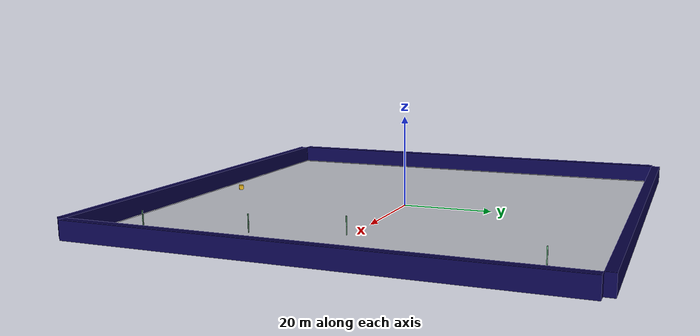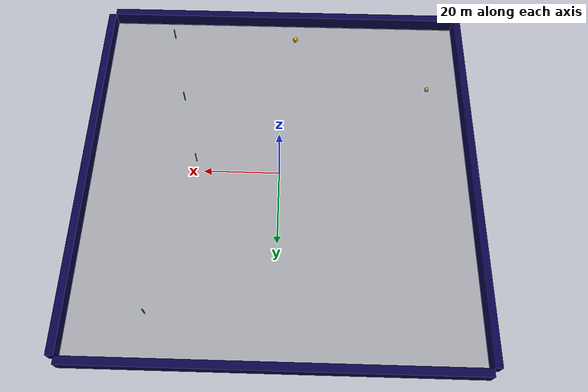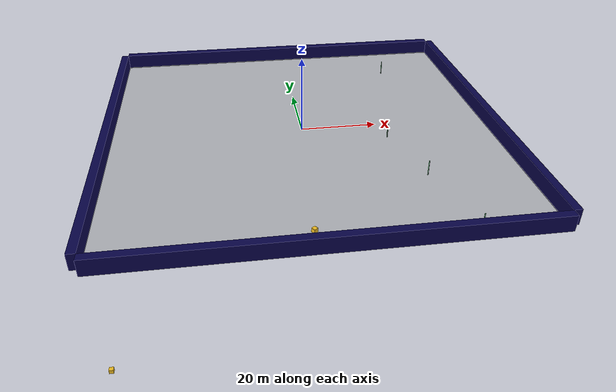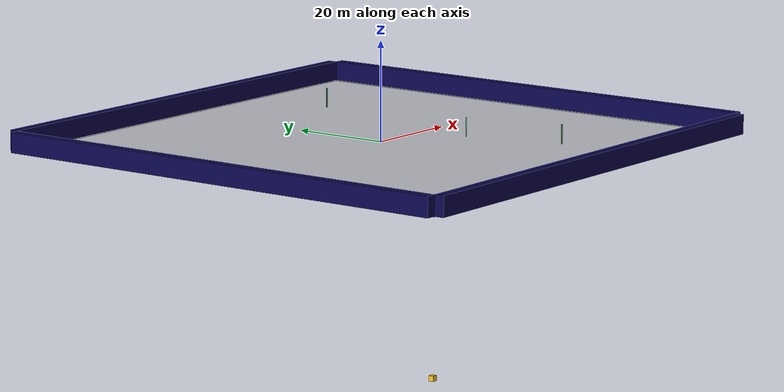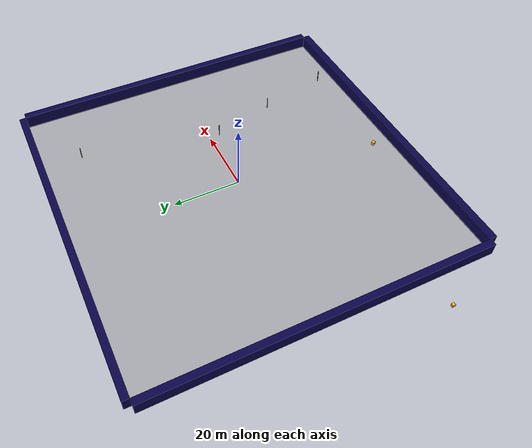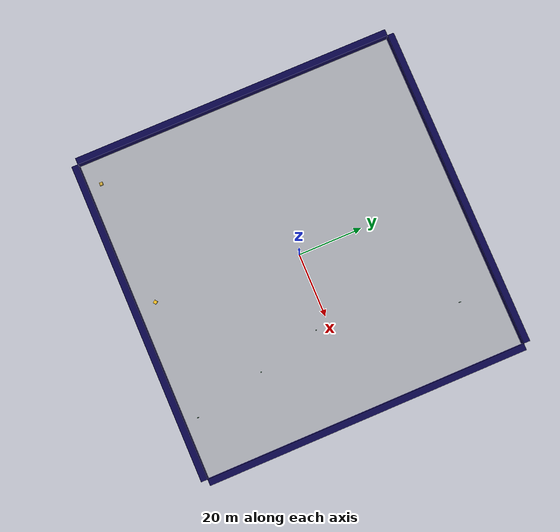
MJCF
<mujoco model="unnamed_model">
  <default>
    <default class="/" />
    <default class="border/" />
    <default class="border_1/" />
    <default class="border_2/" />
    <default class="border_3/" />
    <default class="placeholder/" />
    <default class="agent/" />
    <default class="tree0/" />
    <default class="tree1/" />
    <default class="tree2/" />
    <default class="tree3/" />
  </default>
  <worldbody>
    <body name="border/">
      <body name="border/border" pos="0 51 2">
        <geom name="border/border_geom" class="border/" type="box" size="50 1 2" rgba="0.035000000000000003 0.016 0.28999999999999998 1" />
      </body>
    </body>
    <body name="border_1/">
      <body name="border_1/border" pos="0 -51 2">
        <geom name="border_1/border_geom" class="border_1/" type="box" size="50 1 2" rgba="0.035000000000000003 0.016 0.28999999999999998 1" />
      </body>
    </body>
    <body name="border_2/">
      <body name="border_2/border" pos="51 0 2">
        <geom name="border_2/border_geom" class="border_2/" type="box" size="1 50 2" rgba="0.035000000000000003 0.016 0.28999999999999998 1" />
      </body>
    </body>
    <body name="border_3/">
      <body name="border_3/border" pos="-51 0 2">
        <geom name="border_3/border_geom" class="border_3/" type="box" size="1 50 2" rgba="0.035000000000000003 0.016 0.28999999999999998 1" />
      </body>
    </body>
    <body name="placeholder/">
      <body name="placeholder/placeholder" pos="-49 -49 -30">
        <geom name="placeholder/box_geom" class="placeholder/" type="box" size="0.5 0.5 0.5" rgba="0.94899999999999995 0.74509999999999998 0.1333 1" euler="0 0 0" />
      </body>
    </body>
    <body euler="0 0 124.15942442042882" name="agent/">
      <joint name="agent/boxagent_freeJoint/" class="/" type="free" />
      <body name="agent/agent" pos="-34.938800000000001 28.053899999999999 0.5" euler="0 0 0">
        <geom name="agent/boxagent_geom" class="agent/" type="box" size="0.5 0.5 0.5" rgba="0.94899999999999995 0.74509999999999998 0.1333 1" euler="0 0 0" />
        <camera name="boxagent_camera" pos="1 0 0.5" euler="90 0 0"/>
      </body>
    </body>
    <body name="tree0/">
      <body name="tree0/tree0" pos="31.619150000000001 38.242500000000007 0.10000000000000001" euler="0 0 89.627964707241631">
        <geom name="tree0/tree_geom" class="tree0/" type="box" size="0.10000000000000001 0.10000000000000001 2" rgba="0.396078431372549 0.6705882352941176 0.48627450980392156 1.0" />
      </body>
    </body>
    <body name="tree1/">
      <body name="tree1/tree1" pos="22.592649999999999 -4.1565000000000083 0.10000000000000001" euler="0 0 -57.78236235442148">
        <geom name="tree1/tree_geom" class="tree1/" type="box" size="0.10000000000000001 0.10000000000000001 2" rgba="0.396078431372549 0.6705882352941176 0.48627450980392156 1.0" />
      </body>
    </body>
    <body name="tree2/">
      <body name="tree2/tree2" pos="27.6511 -23.881700000000002 0.10000000000000001" euler="0 0 -126.46070479271751">
        <geom name="tree2/tree_geom" class="tree2/" type="box" size="0.10000000000000001 0.10000000000000001 2" rgba="0.396078431372549 0.6705882352941176 0.48627450980392156 1.0" />
      </body>
    </body>
    <body name="tree3/">
      <body name="tree3/tree3" pos="32.609200000000001 -46.087600000000002 0.10000000000000001" euler="0 0 77.387519710810068">
        <geom name="tree3/tree_geom" class="tree3/" type="box" size="0.10000000000000001 0.10000000000000001 2" rgba="0.396078431372549 0.6705882352941176 0.48627450980392156 1.0" />
      </body>
    </body>
    <geom name="base_plane" class="/" type="plane" size="50 50 0.10000000000000001" />
  </worldbody>
</mujoco>
